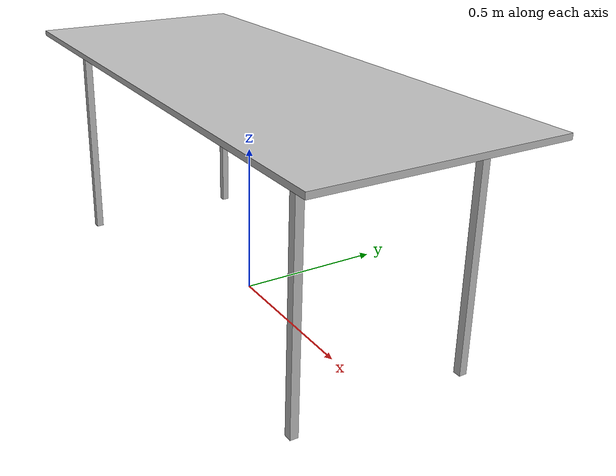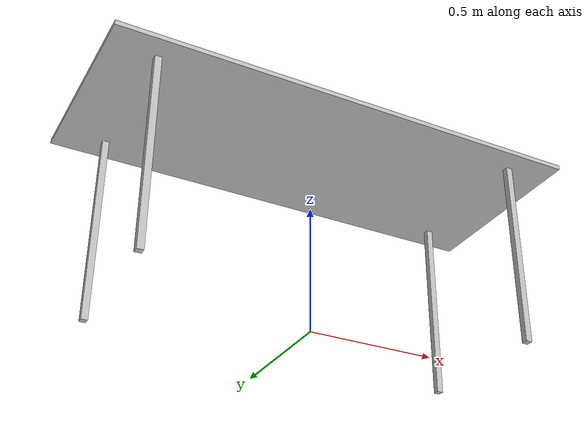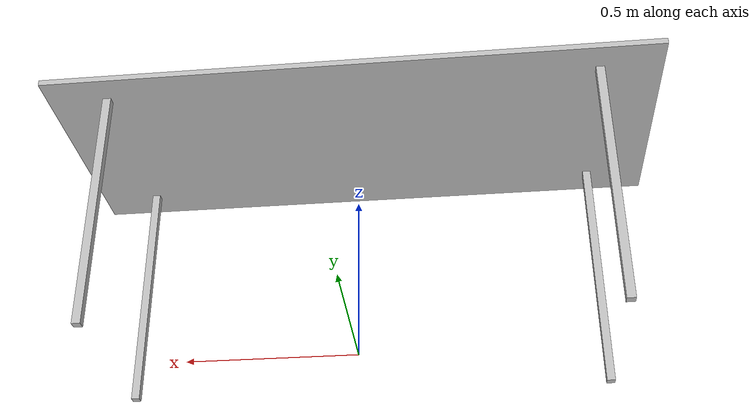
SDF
<?xml version="1.0"?>
<sdf version="1.6">
  <model name="rgo2017/table_dinner">
    <link name="1_link">
      <collision name="1_col">
        <geometry>
          <box>
            <size>1.83 0.76 0.018</size>
          </box>
        </geometry>
      </collision>
      <visual name="1_vis">
        <geometry>
          <box>
            <size>1.83 0.76 0.018</size>
          </box>
        </geometry>
        <material>
          <ambient>0.75 0.75 0.75 1</ambient>
        </material>
      </visual>
      <pose>0 0 0.751 0 0 0</pose>
    </link>
    <link name="2_link">
      <collision name="2_col">
        <geometry>
          <box>
            <size>0.025 0.025 0.742</size>
          </box>
        </geometry>
      </collision>
      <visual name="2_vis">
        <geometry>
          <box>
            <size>0.025 0.025 0.742</size>
          </box>
        </geometry>
        <material>
          <ambient>0.75 0.75 0.75 1</ambient>
        </material>
      </visual>
      <pose>-0.7325 -0.2825 0.371 0 0 0</pose>
    </link>
    <link name="3_link">
      <collision name="3_col">
        <geometry>
          <box>
            <size>0.025 0.025 0.742</size>
          </box>
        </geometry>
      </collision>
      <visual name="3_vis">
        <geometry>
          <box>
            <size>0.025 0.025 0.742</size>
          </box>
        </geometry>
        <material>
          <ambient>0.75 0.75 0.75 1</ambient>
        </material>
      </visual>
      <pose>0.7325 -0.2825 0.371 0 0 0</pose>
    </link>
    <link name="4_link">
      <collision name="4_col">
        <geometry>
          <box>
            <size>0.025 0.025 0.742</size>
          </box>
        </geometry>
      </collision>
      <visual name="4_vis">
        <geometry>
          <box>
            <size>0.025 0.025 0.742</size>
          </box>
        </geometry>
        <material>
          <ambient>0.75 0.75 0.75 1</ambient>
        </material>
      </visual>
      <pose>-0.7325 0.2825 0.371 0 0 0</pose>
    </link>
    <link name="5_link">
      <collision name="5_col">
        <geometry>
          <box>
            <size>0.025 0.025 0.742</size>
          </box>
        </geometry>
      </collision>
      <visual name="5_vis">
        <geometry>
          <box>
            <size>0.025 0.025 0.742</size>
          </box>
        </geometry>
        <material>
          <ambient>0.75 0.75 0.75 1</ambient>
        </material>
      </visual>
      <pose>0.7325 0.2825 0.371 0 0 0</pose>
    </link>
    <link name="on_top_of">
      <virtual_volume name="on_top_of_vv">
        <geometry>
          <box>
            <size>1.77 0.7 0.25</size>
          </box>
        </geometry>
        <pose>0.0 0.0 0.905 0 0 0</pose>
      </virtual_volume>
    </link>
    <link name="in_front_of">
      <virtual_volume name="in_front_of_vv">
        <geometry>
          <box>
            <size>0.2 0.56 0.01</size>
          </box>
        </geometry>
        <pose>1.715 0.0 0.005 0 0 0</pose>
      </virtual_volume>
    </link>
    <static>true</static>
  </model>
</sdf>
